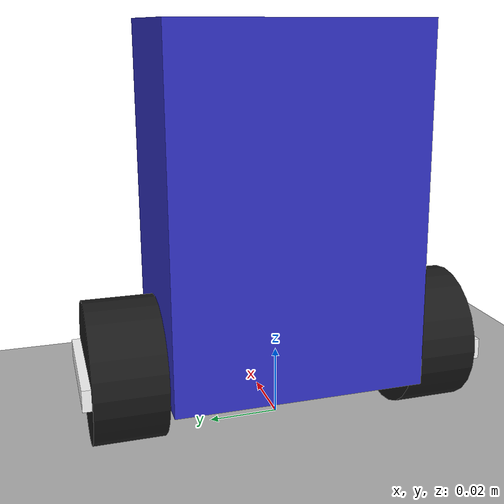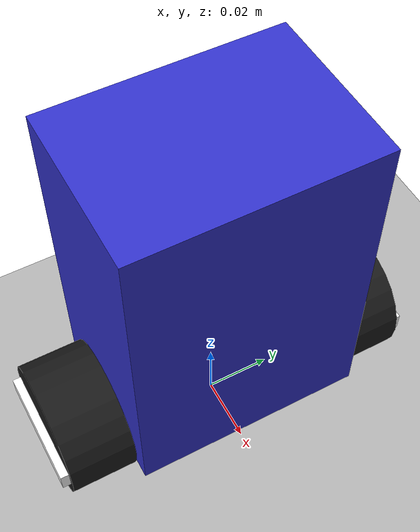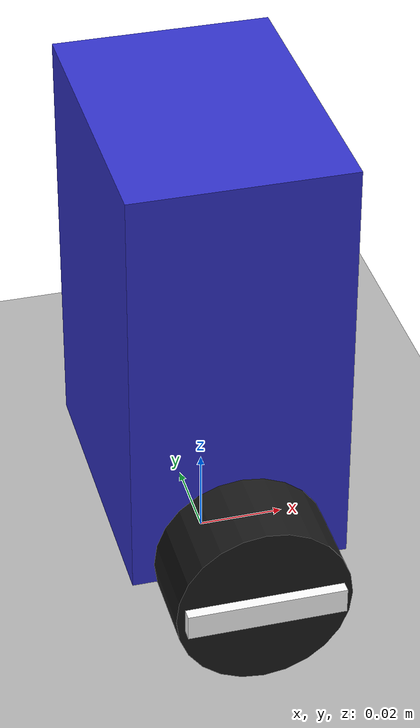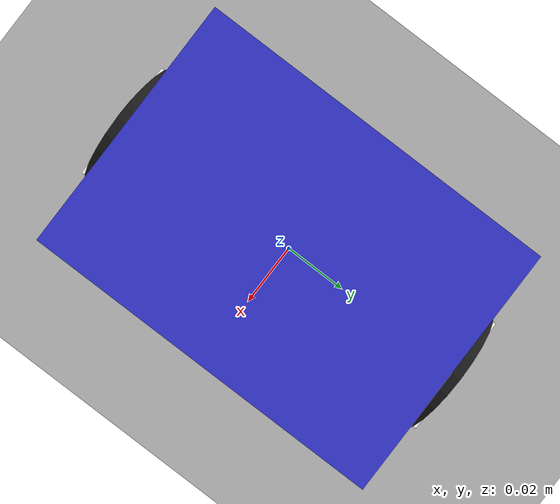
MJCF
<?xml version="1.0" encoding="UTF-8"?>

<mujoco model="two_wheeled_balancing_robot">

    <!-- COMPILER / SIMULATION SETTINGS                                  -->

    <compiler
        angle="radian"
        coordinate="local"/>

    <option
        timestep="0.002"
        gravity="0 0 -9.81"
        integrator="implicitfast"/>

    <!-- DEFAULT PHYSICS                                                 -->

    <default>

        <!-- Wheel joint dynamics -->
        <joint
            damping="0.02"
            armature="0.0001"/>

        <!-- Contact properties -->
        <geom
            contype="1"
            conaffinity="1"
            friction="1.0 0.005 0.0005"
            condim="3"/>

    </default>

    <!-- ASSETS                                                           -->

    <asset>

        <material
            name="ground_material"
            rgba="0.7 0.7 0.7 1"/>

    </asset>

    <!-- WORLD                                                             -->

    <worldbody>

        <!-- Lighting -->
        <light
            name="top_light"
            pos="0 0 1"
            directional="true"/>

        <!-- Ground -->
        <geom
            name="ground"
            type="plane"
            pos="0 0 0"
            size="2 2 0.1"
            material="ground_material"/>

        <!-- ROBOT BASE                                                    -->

        <body
            name="base_link"
            pos="0 0 0.065">

            <!-- Allow the robot to freely fall and balance -->
            <freejoint name="base_free"/>

            <!-- Chassis inertial properties -->
            <inertial
                pos="0 0 0"
                mass="2.0"
                diaginertia="0.00248333 0.00208333 0.00123333"/>

            <!-- Chassis -->
            <geom
                name="chassis"
                type="box"
                size="0.025 0.035 0.05"
                rgba="0.2 0.2 0.8 1"/>

            <!-- LEFT WHEEL                                                 -->

            <body
                name="left_wheel"
                pos="0 0.045 -0.045">

                <joint
                    name="left_wheel_joint"
                    type="hinge"
                    axis="0 1 0"
                    damping="0.02"/>

                <inertial
                    pos="0 0 0"
                    mass="0.05"
                    diaginertia="6.66667e-6 1e-5 6.66667e-6"/>

                <geom
                    name="left_wheel_geom"
                    type="cylinder"
                    size="0.02 0.01"
                    euler="1.5708 0 0"
                    rgba="0.1 0.1 0.1 1"/>

                <!-- Visual stripe for observing wheel rotation -->
                <site
                    name="left_wheel_stripe"
                    type="box"
                    pos="0 0.011 0"
                    size="0.018 0.0015 0.003"
                    rgba="1 1 1 1"/>

            </body>

            <!-- RIGHT WHEEL                                                -->

            <body
                name="right_wheel"
                pos="0 -0.045 -0.045">

                <joint
                    name="right_wheel_joint"
                    type="hinge"
                    axis="0 1 0"
                    damping="0.02"/>

                <inertial
                    pos="0 0 0"
                    mass="0.05"
                    diaginertia="6.66667e-6 1e-5 6.66667e-6"/>

                <geom
                    name="right_wheel_geom"
                    type="cylinder"
                    size="0.02 0.01"
                    euler="1.5708 0 0"
                    rgba="0.1 0.1 0.1 1"/>

                <!-- Visual stripe for observing wheel rotation -->
                <site
                    name="right_wheel_stripe"
                    type="box"
                    pos="0 -0.011 0"
                    size="0.018 0.0015 0.003"
                    rgba="1 1 1 1"/>

            </body>

        </body>

    </worldbody>

    <!-- ACTUATORS                                                        -->

    <actuator>

        <!-- Direct wheel torque control -->
        <motor
            name="left_motor"
            joint="left_wheel_joint"
            gear="1"/>

        <motor
            name="right_motor"
            joint="right_wheel_joint"
            gear="1"/>

    </actuator>

</mujoco>
